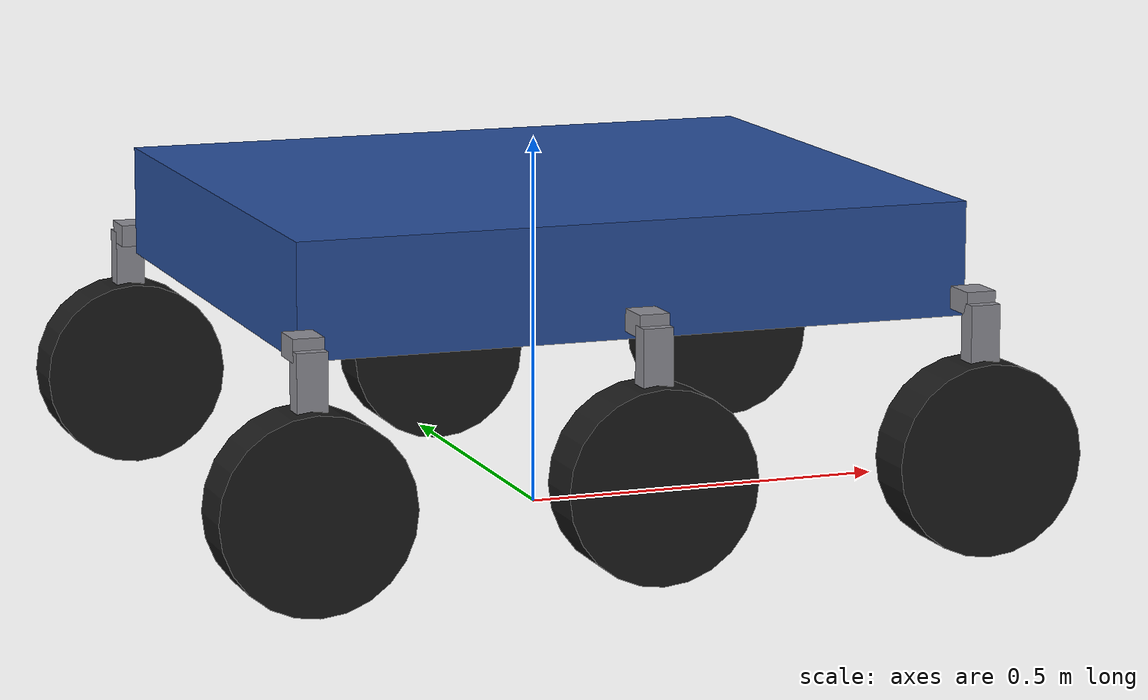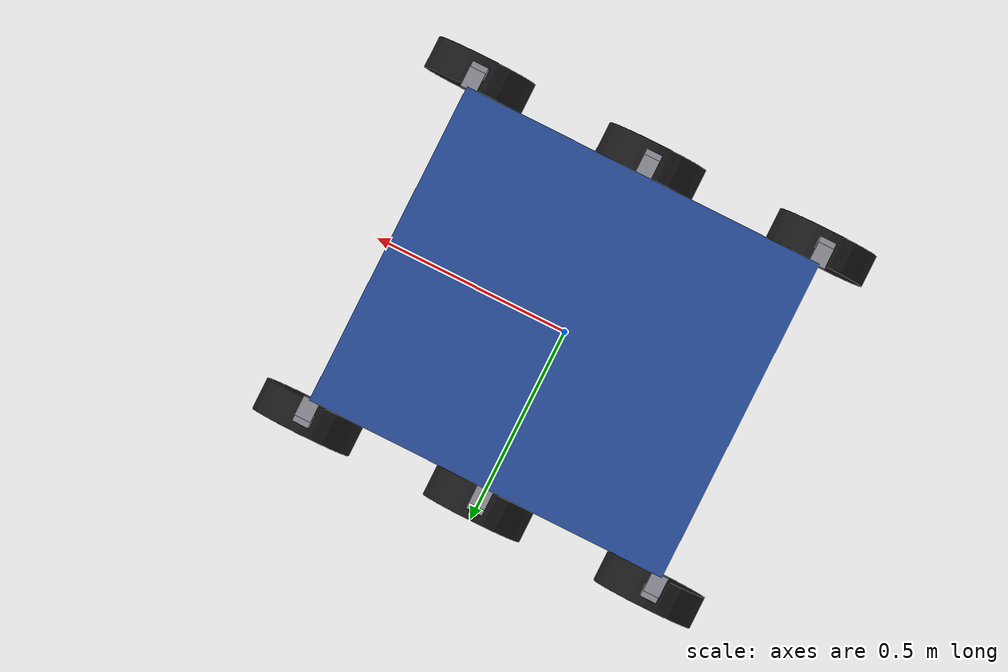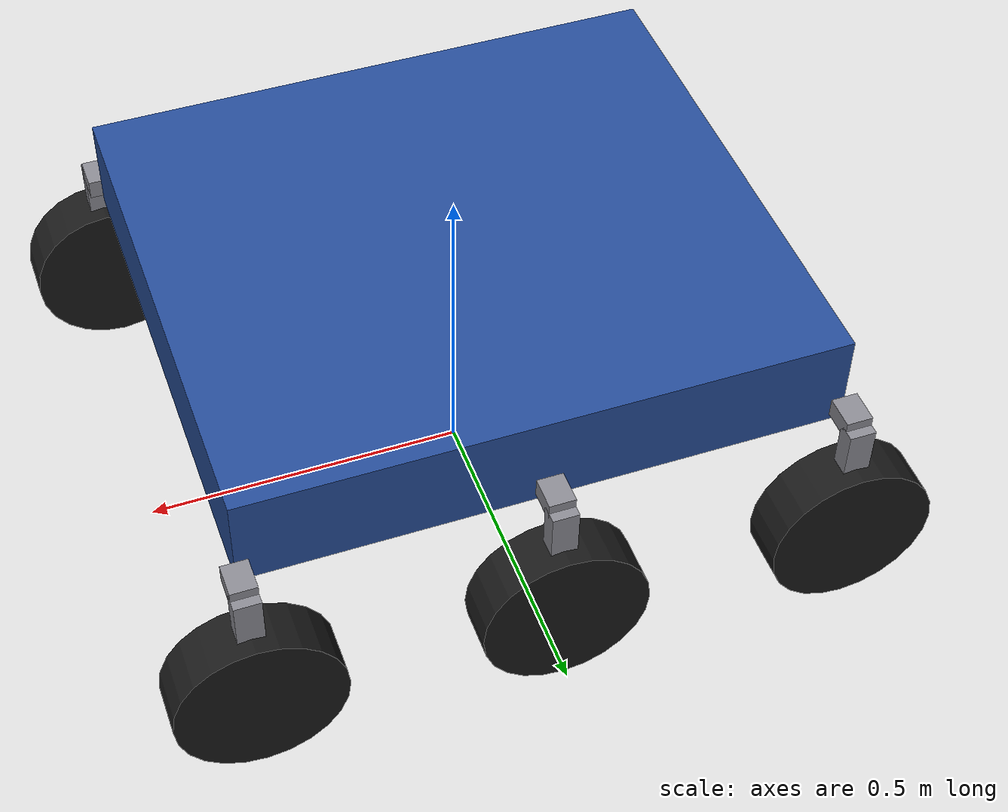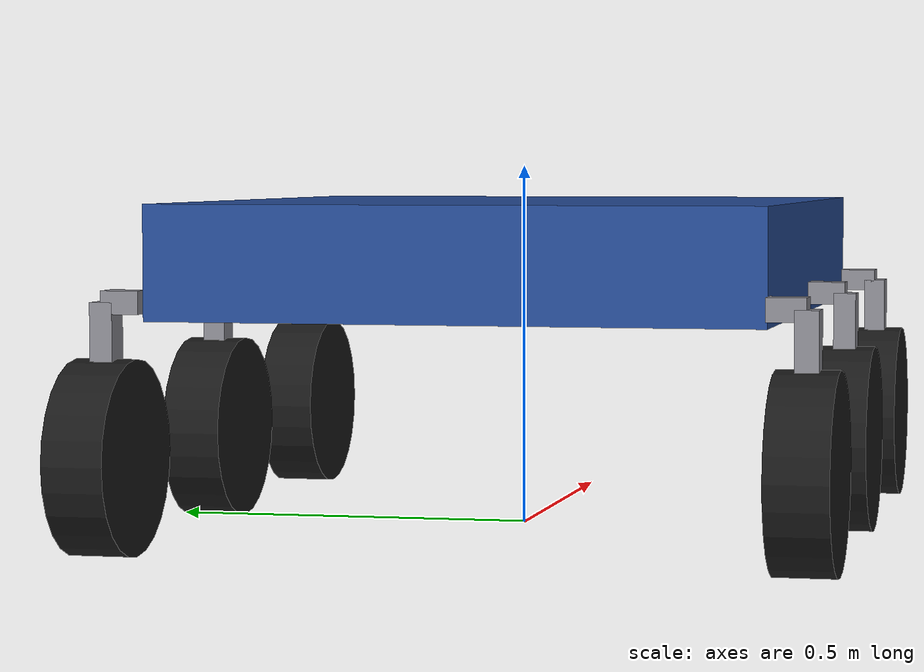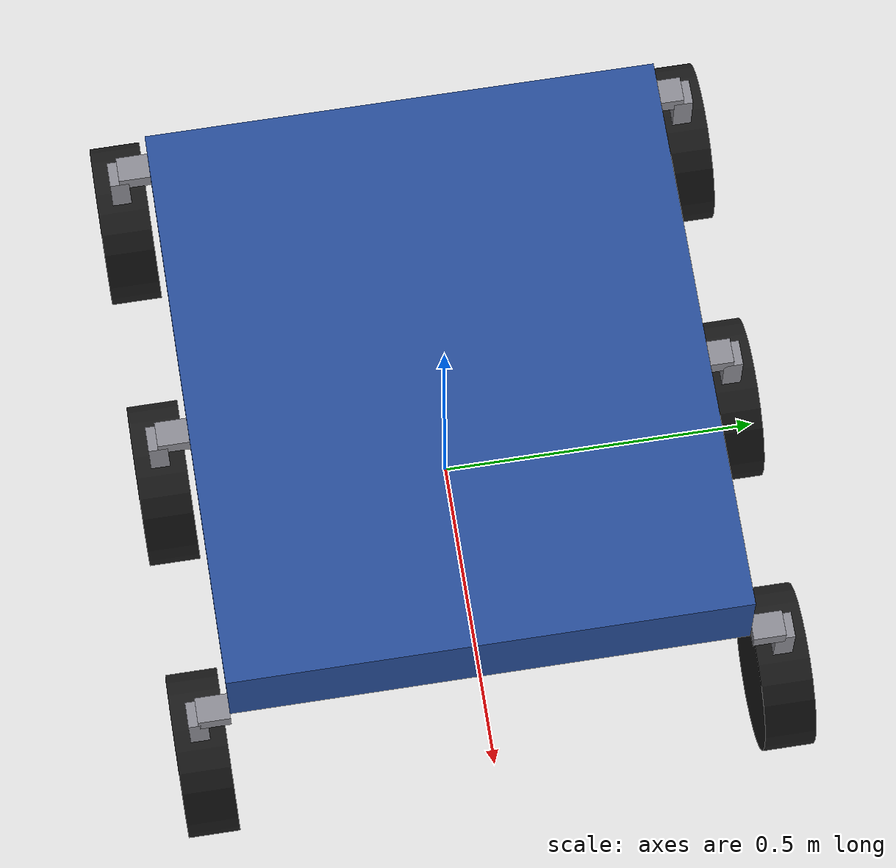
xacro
<?xml version="1.0"?>
<robot xmlns:xacro="http://www.ros.org/wiki/xacro" name="rover">

  <!-- ===================== Parameters ===================== -->
  <xacro:property name="PI" value="3.14159265359"/>

  <!-- Chassis -->
  <xacro:property name="chassis_l" value="0.90"/>
  <xacro:property name="chassis_w" value="0.80"/>
  <xacro:property name="chassis_h" value="0.15"/>
  <xacro:property name="chassis_m" value="15.0"/>

  <!-- Wheels -->
  <xacro:property name="wheel_r" value="0.127"/>
  <xacro:property name="wheel_w" value="0.08"/>
  <xacro:property name="wheel_m" value="0.8"/>

  <!-- Drivetrain geometry (edit these to match your kinematics controller) -->
  <xacro:property name="wheelbase" value="0.90"/>   <!-- front axle to rear axle -->
  <xacro:property name="middle_x"  value="0.0"/>    <!-- middle axle position along x -->
  <xacro:property name="wheel_y"   value="0.45"/>   <!-- wheel center lateral offset (track = 2 * this) -->
  <xacro:property name="wheel_z"   value="0.25"/>   <!-- wheel center height below base_link -->
  <xacro:property name="steer_to_wheel" value="0.05"/>  <!-- steering axis to wheel center, vertical -->
  <xacro:property name="arm_z"     value="-0.05"/>  <!-- height of the mounting arms on the chassis -->

  <!-- Steering -->
  <xacro:property name="steer_limit" value="0.70"/>  <!-- rad, about 40 deg -->

  <!-- Gazebo steering position-controller PID gains (tune in sim) -->
  <xacro:property name="steer_p"   value="20.0"/>
  <xacro:property name="steer_i"   value="0.0"/>
  <xacro:property name="steer_d"   value="1.0"/>
  <xacro:property name="steer_cmd_max" value="20.0"/>   <!-- N*m, matches steer joint effort limit -->
  <xacro:property name="ns" value="/rover"/>            <!-- topic namespace for all controllers -->

  <!-- Wheels touch z=0 when base_footprint sits (wheel_z + wheel_r) below base_link. -->

  <!-- ===================== Materials ===================== -->
  <material name="body_blue"><color rgba="0.15 0.30 0.60 1.0"/></material>
  <material name="grey"><color rgba="0.55 0.55 0.58 1.0"/></material>
  <material name="dark"><color rgba="0.10 0.10 0.10 1.0"/></material>

  <!-- ===================== Macros ===================== -->

  <xacro:macro name="box_inertial" params="m x y z">
    <inertial>
      <mass value="${m}"/>
      <inertia ixx="${m*(y*y+z*z)/12}" ixy="0" ixz="0"
               iyy="${m*(x*x+z*z)/12}" iyz="0"
               izz="${m*(x*x+y*y)/12}"/>
    </inertial>
  </xacro:macro>

  <!-- Visual-only mounting arm and post from the chassis side down to a wheel station.
       Goes inside base_link. -->
  <xacro:macro name="strut" params="x s">
    <visual>
      <origin xyz="${x} ${s*(wheel_y + chassis_w/2)/2} ${arm_z}"/>
      <geometry><box size="0.04 ${wheel_y - chassis_w/2} 0.03"/></geometry>
      <material name="grey"/>
    </visual>
    <visual>
      <origin xyz="${x} ${s*wheel_y} ${(arm_z - (wheel_z - steer_to_wheel))/2}"/>
      <geometry><box size="0.04 0.03 ${(wheel_z - steer_to_wheel) + arm_z}"/></geometry>
      <material name="grey"/>
    </visual>
  </xacro:macro>

  <!-- Drive wheel: continuous joint about y. Positive rotation = forward on both sides. -->
  <xacro:macro name="wheel" params="name parent x y z">
    <link name="${name}_wheel">
      <visual>
        <origin xyz="0 0 0" rpy="${PI/2} 0 0"/>
        <geometry><cylinder radius="${wheel_r}" length="${wheel_w}"/></geometry>
        <material name="dark"/>
      </visual>
      <collision>
        <origin xyz="0 0 0" rpy="${PI/2} 0 0"/>
        <geometry><cylinder radius="${wheel_r}" length="${wheel_w}"/></geometry>
      </collision>
      <inertial>
        <origin xyz="0 0 0" rpy="${PI/2} 0 0"/>
        <mass value="${wheel_m}"/>
        <inertia ixx="${wheel_m*(3*wheel_r*wheel_r+wheel_w*wheel_w)/12}" ixy="0" ixz="0"
                 iyy="${wheel_m*(3*wheel_r*wheel_r+wheel_w*wheel_w)/12}" iyz="0"
                 izz="${0.5*wheel_m*wheel_r*wheel_r}"/>
      </inertial>
    </link>
    <joint name="${name}_wheel_joint" type="continuous">
      <parent link="${parent}"/>
      <child link="${name}_wheel"/>
      <origin xyz="${x} ${y} ${z}" rpy="0 0 0"/>
      <axis xyz="0 1 0"/>
      <limit effort="10.0" velocity="30.0"/>
      <dynamics damping="0.01" friction="0.01"/>
    </joint>
    <gazebo reference="${name}_wheel">
      <mu1>1.0</mu1>
      <mu2>1.0</mu2>
    </gazebo>

    <!-- Gazebo Fortress velocity controller for this drive joint.
         Command: ign topic -t ${ns}/${name}/wheel/cmd_vel -m ignition.msgs.Double -p 'data: 5.0' -->
    <gazebo>
      <plugin filename="ignition-gazebo-joint-controller-system"
              name="ignition::gazebo::systems::JointController">
        <joint_name>${name}_wheel_joint</joint_name>
        <topic>${ns}/${name}/wheel/cmd_vel</topic>
        <initial_velocity>0.0</initial_velocity>
      </plugin>
    </gazebo>
  </xacro:macro>

  <!-- Steered wheel module: vertical steering joint, then the drive wheel on a short fork. -->
  <xacro:macro name="steer_module" params="name parent x y z">
    <link name="${name}_steer_link">
      <visual>
        <origin xyz="0 0 ${-steer_to_wheel/2}"/>
        <geometry><box size="0.03 0.03 ${steer_to_wheel}"/></geometry>
        <material name="grey"/>
      </visual>
      <xacro:box_inertial m="0.2" x="0.03" y="0.03" z="${steer_to_wheel}"/>
    </link>
    <joint name="${name}_steer_joint" type="continuous">
      <parent link="${parent}"/>
      <child link="${name}_steer_link"/>
      <origin xyz="${x} ${y} ${z}" rpy="0 0 0"/>
      <axis xyz="0 0 1"/>
      <limit lower="${-steer_limit}" upper="${steer_limit}" effort="20.0" velocity="3.0"/>
      <dynamics damping="0.1" friction="0.05"/>
    </joint>

    <!-- Gazebo Fortress position controller for this steering joint.
         Command: ign topic -t ${ns}/${name}/steer/cmd_pos -m ignition.msgs.Double -p 'data: 0.3' -->
    <gazebo>
      <plugin filename="ignition-gazebo-joint-position-controller-system"
              name="ignition::gazebo::systems::JointPositionController">
        <joint_name>${name}_steer_joint</joint_name>
        <topic>${ns}/${name}/steer/cmd_pos</topic>
        <p_gain>${steer_p}</p_gain>
        <i_gain>${steer_i}</i_gain>
        <d_gain>${steer_d}</d_gain>
        <cmd_max>${steer_cmd_max}</cmd_max>
        <cmd_min>${-steer_cmd_max}</cmd_min>
        <initial_position>0.0</initial_position>
      </plugin>
    </gazebo>

    <xacro:wheel name="${name}" parent="${name}_steer_link" x="0" y="0" z="${-steer_to_wheel}"/>
  </xacro:macro>

  <!-- One side of the drivetrain. s = +1 (left) or -1 (right). All modules mount to base_link. -->
  <xacro:macro name="side" params="side s">
    <!-- Front corner: steer + drive -->
    <xacro:steer_module name="${side}_front" parent="base_link"
                        x="${wheelbase/2}" y="${s*wheel_y}" z="${-(wheel_z - steer_to_wheel)}"/>

    <!-- Middle: drive only (no steering joint) -->
    <xacro:wheel name="${side}_middle" parent="base_link"
                 x="${middle_x}" y="${s*wheel_y}" z="${-wheel_z}"/>

    <!-- Rear corner: steer + drive -->
    <xacro:steer_module name="${side}_rear" parent="base_link"
                        x="${-wheelbase/2}" y="${s*wheel_y}" z="${-(wheel_z - steer_to_wheel)}"/>
  </xacro:macro>

  <!-- ===================== Robot ===================== -->

  <link name="base_footprint"/>

  <link name="base_link">
    <visual>
      <geometry><box size="${chassis_l} ${chassis_w} ${chassis_h}"/></geometry>
      <material name="body_blue"/>
    </visual>
    <collision>
      <geometry><box size="${chassis_l} ${chassis_w} ${chassis_h}"/></geometry>
    </collision>
    <xacro:box_inertial m="${chassis_m}" x="${chassis_l}" y="${chassis_w}" z="${chassis_h}"/>

    <!-- Mounting struts for the six wheel stations (visual only) -->
    <xacro:strut x="${wheelbase/2}"  s="1"/>
    <xacro:strut x="${middle_x}"     s="1"/>
    <xacro:strut x="${-wheelbase/2}" s="1"/>
    <xacro:strut x="${wheelbase/2}"  s="-1"/>
    <xacro:strut x="${middle_x}"     s="-1"/>
    <xacro:strut x="${-wheelbase/2}" s="-1"/>
  </link>

  <joint name="base_footprint_joint" type="fixed">
    <parent link="base_footprint"/>
    <child link="base_link"/>
    <origin xyz="0 0 ${wheel_z + wheel_r}" rpy="0 0 0"/>
  </joint>

  <xacro:side side="left"  s="1"/>
  <xacro:side side="right" s="-1"/>

</robot>
